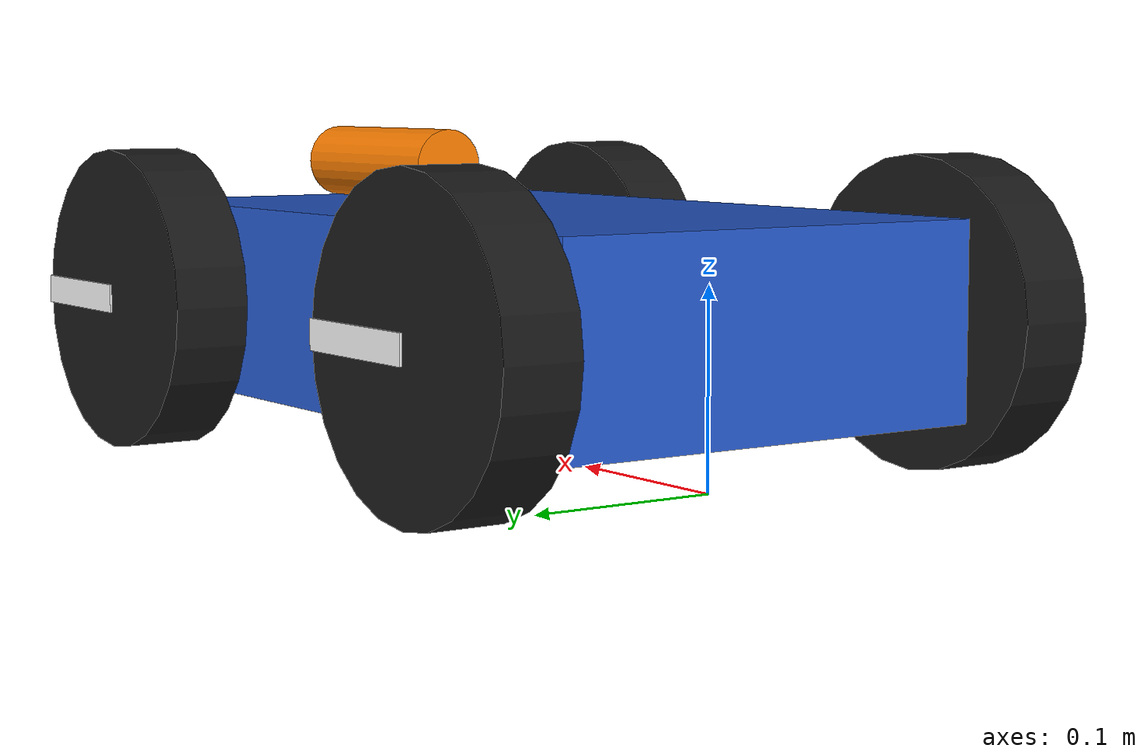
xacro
<?xml version="1.0"?>

<robot name="ackermann_robot" xmlns:xacro="http://www.ros.org/wiki/xacro">

  <xacro:include filename="$(find das_mr_r2c)/urdf/common.xacro"/>
  <xacro:include filename="$(find das_mr_r2c)/urdf/ackermann/ackermann.ros2_control.xacro"/>

  <xacro:property name="base_length"    value="0.40"/>
  <xacro:property name="base_width"     value="0.24"/>
  <xacro:property name="base_height"    value="0.10"/>
  <xacro:property name="wheel_radius"   value="0.08"/>
  <xacro:property name="wheel_width"    value="0.04"/>
  <xacro:property name="wheelbase"      value="0.30"/>
  <xacro:property name="wheel_track"    value="0.30"/>
  <xacro:property name="max_steering"   value="0.6"/>

  <!-- base_footprint is the rear axle center, the reference point of Ackermann odometry -->
  <link name="base_footprint"/>

  <link name="base_link">
    <visual>
      <geometry><box size="${base_length} ${base_width} ${base_height}"/></geometry>
      <material name="blue"/>
    </visual>
    <collision>
      <geometry><box size="${base_length} ${base_width} ${base_height}"/></geometry>
    </collision>
    <xacro:box_inertia m="5.0" x="${base_length}" y="${base_width}" z="${base_height}"/>
  </link>

  <joint name="base_joint" type="fixed">
    <parent link="base_footprint"/>
    <child link="base_link"/>
    <origin xyz="${wheelbase/2} 0 ${wheel_radius}" rpy="0 0 0"/>
  </joint>

  <link name="front_marker_link">
    <visual>
      <origin xyz="0 0 0" rpy="0 ${pi/2} 0"/>
      <geometry><cylinder radius="0.02" length="0.12"/></geometry>
      <material name="orange"/>
    </visual>
  </link>
  <joint name="front_marker_joint" type="fixed">
    <parent link="base_link"/>
    <child link="front_marker_link"/>
    <origin xyz="${base_length/2 - 0.06} 0 ${base_height/2 + 0.02}" rpy="0 0 0"/>
  </joint>

  <xacro:macro name="wheel_link" params="name">
    <link name="${name}">
      <visual>
        <origin xyz="0 0 0" rpy="${pi/2} 0 0"/>
        <geometry><cylinder radius="${wheel_radius}" length="${wheel_width}"/></geometry>
        <material name="black"/>
      </visual>
      <visual>
        <origin xyz="${wheel_radius/2} 0 0" rpy="0 0 0"/>
        <geometry><box size="${wheel_radius} ${wheel_width + 0.002} 0.015"/></geometry>
        <material name="white"/>
      </visual>
      <collision>
        <origin xyz="0 0 0" rpy="${pi/2} 0 0"/>
        <geometry><cylinder radius="${wheel_radius}" length="${wheel_width}"/></geometry>
      </collision>
      <xacro:cylinder_inertia m="0.5" r="${wheel_radius}" h="${wheel_width}"/>
    </link>
  </xacro:macro>

  <xacro:macro name="rear_wheel" params="side y_reflect">
    <xacro:wheel_link name="rear_${side}_wheel_link"/>
    <joint name="rear_${side}_wheel_joint" type="continuous">
      <parent link="base_link"/>
      <child link="rear_${side}_wheel_link"/>
      <origin xyz="${-wheelbase/2} ${y_reflect * wheel_track / 2} 0" rpy="0 0 0"/>
      <axis xyz="0 1 0"/>
    </joint>
  </xacro:macro>

  <xacro:macro name="front_wheel" params="side y_reflect">
    <link name="front_${side}_steering_link">
      <visual>
        <geometry><cylinder radius="0.015" length="0.04"/></geometry>
        <material name="grey"/>
      </visual>
      <xacro:cylinder_inertia m="0.1" r="0.015" h="0.04"/>
    </link>
    <joint name="front_${side}_steering_joint" type="revolute">
      <parent link="base_link"/>
      <child link="front_${side}_steering_link"/>
      <origin xyz="${wheelbase/2} ${y_reflect * wheel_track / 2} 0" rpy="0 0 0"/>
      <axis xyz="0 0 1"/>
      <limit lower="${-max_steering}" upper="${max_steering}" effort="10.0" velocity="2.0"/>
    </joint>

    <xacro:wheel_link name="front_${side}_wheel_link"/>
    <joint name="front_${side}_wheel_joint" type="fixed">
      <parent link="front_${side}_steering_link"/>
      <child link="front_${side}_wheel_link"/>
      <origin xyz="0 0 0" rpy="0 0 0"/>
    </joint>
  </xacro:macro>

  <xacro:rear_wheel  side="left"  y_reflect="1"/>
  <xacro:rear_wheel  side="right" y_reflect="-1"/>
  <xacro:front_wheel side="left"  y_reflect="1"/>
  <xacro:front_wheel side="right" y_reflect="-1"/>

  <xacro:ackermann_ros2_control name="AckermannMockSystem" max_steering="${max_steering}"/>

</robot>

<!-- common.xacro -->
<!-- Shared materials and inertia helpers (inertias are only cosmetic here,
     there is no physics simulation – the mock hardware just integrates commands). -->
<robot xmlns:xacro="http://www.ros.org/wiki/xacro">

  <material name="blue"><color rgba="0.15 0.35 0.8 1.0"/></material>
  <material name="black"><color rgba="0.1 0.1 0.1 1.0"/></material>
  <material name="grey"><color rgba="0.6 0.6 0.6 1.0"/></material>
  <material name="orange"><color rgba="1.0 0.5 0.0 1.0"/></material>
  <material name="white"><color rgba="0.95 0.95 0.95 1.0"/></material>

  <xacro:macro name="box_inertia" params="m x y z">
    <inertial>
      <mass value="${m}"/>
      <inertia ixx="${m*(y*y+z*z)/12}" ixy="0" ixz="0"
               iyy="${m*(x*x+z*z)/12}" iyz="0"
               izz="${m*(x*x+y*y)/12}"/>
    </inertial>
  </xacro:macro>

  <xacro:macro name="cylinder_inertia" params="m r h">
    <inertial>
      <mass value="${m}"/>
      <inertia ixx="${m*(3*r*r+h*h)/12}" ixy="0" ixz="0"
               iyy="${m*(3*r*r+h*h)/12}" iyz="0"
               izz="${m*r*r/2}"/>
    </inertial>
  </xacro:macro>

</robot>
